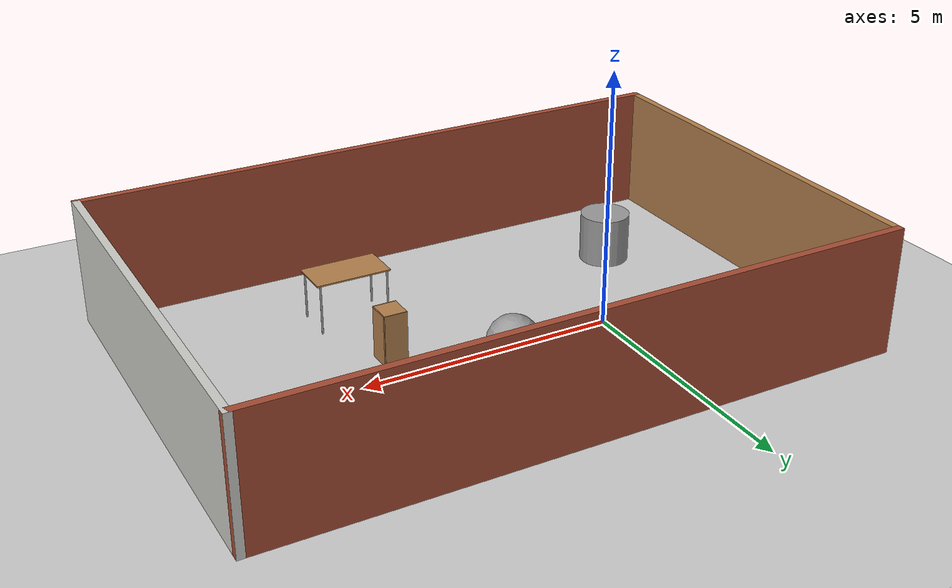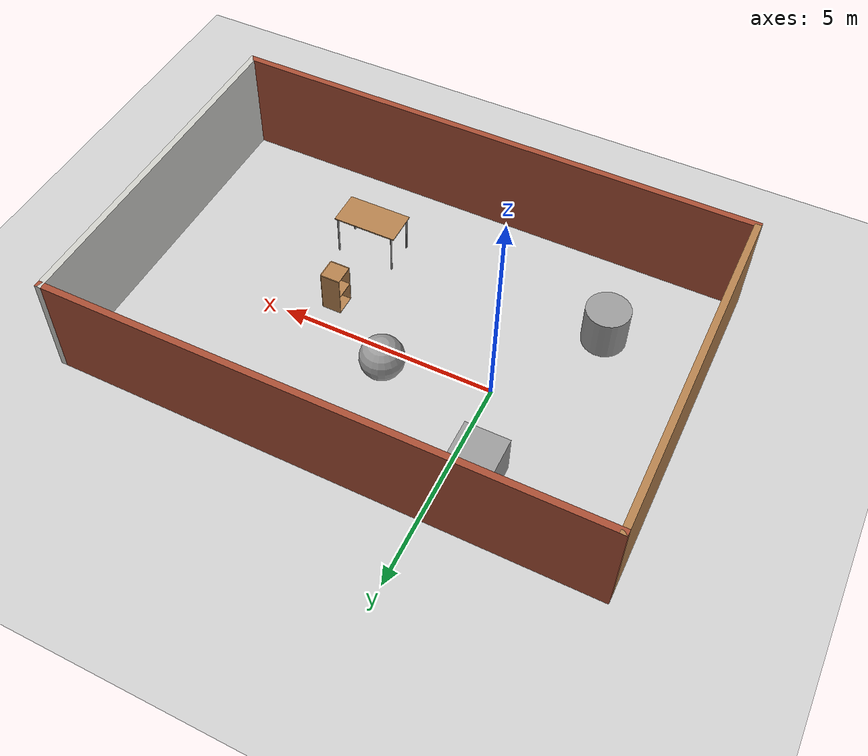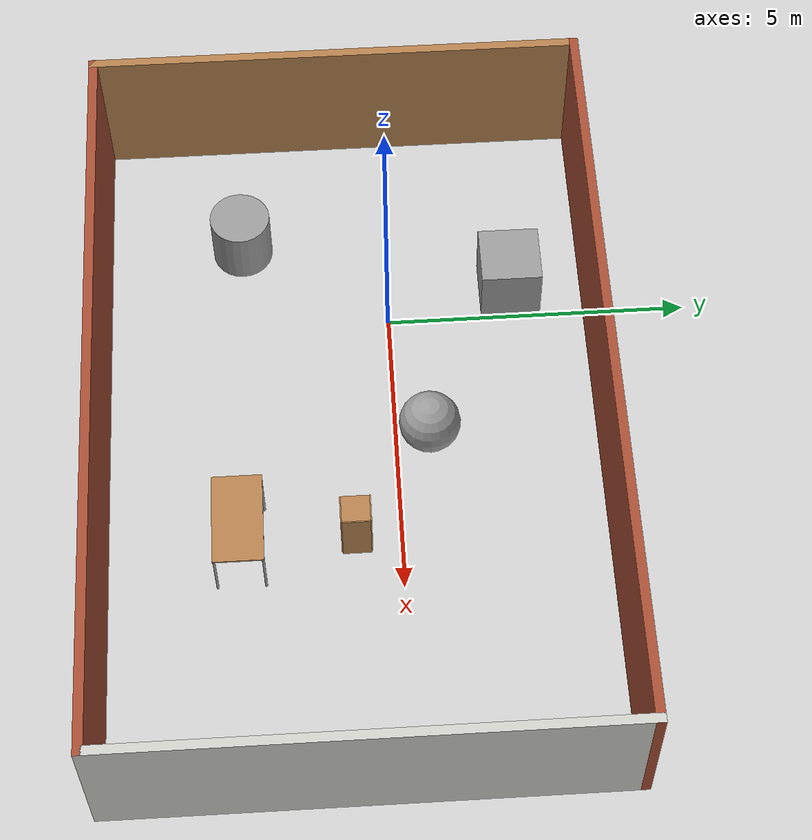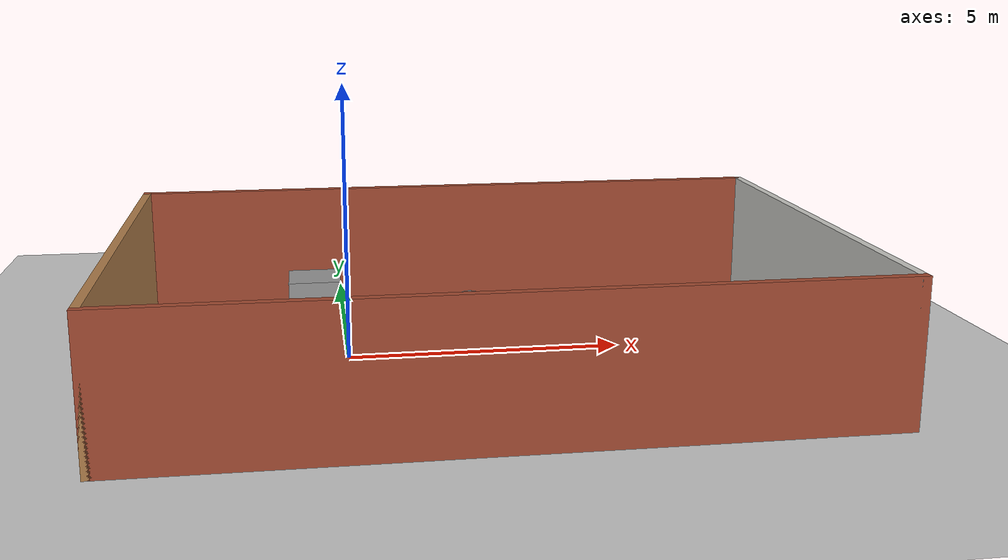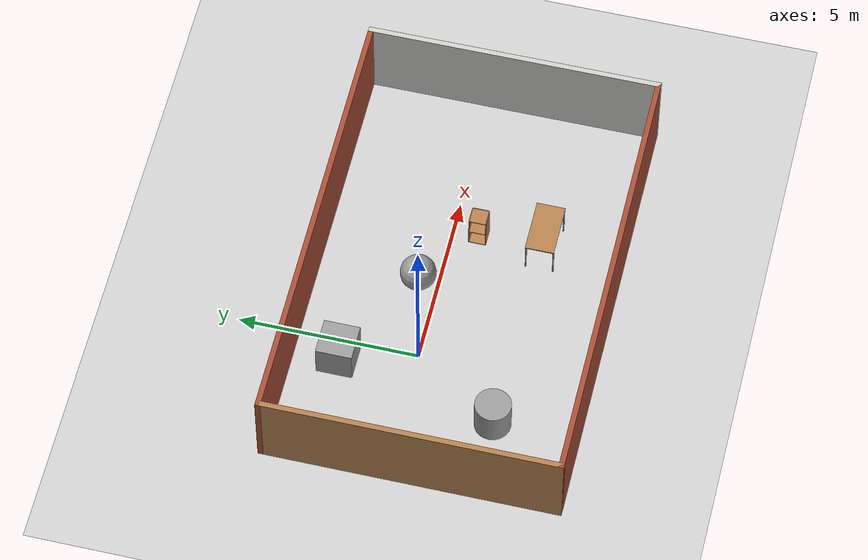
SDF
<sdf version="1.6">
 <world name="default">
  <light name="sun" type="directional">
   <pose>0 0 10 0 -0 0</pose>
   <diffuse>0.8 0.8 0.8 1</diffuse>
   <specular>0.2 0.2 0.2 1</specular>
   <attenuation>
    <range>1000</range>
    <constant>0.9</constant>
    <linear>0.01</linear>
    <quadratic>0.001</quadratic>
   </attenuation>
   <direction>-0.5 0.1 -0.9</direction>
  </light>
  <model name="ground_plane">
   <static>1</static>
   <link name="link">
    <collision name="collision">
     <geometry><plane><normal>0 0 1</normal><size>100 100</size></plane></geometry>
     <surface><friction><ode><mu>100</mu><mu2>50</mu2></ode></friction></surface>
    </collision>
    <visual name="visual">
     <cast_shadows>0</cast_shadows>
     <geometry><plane><normal>0 0 1</normal><size>100 100</size></plane></geometry>
     <material>
      <script><uri>file://media/materials/scripts/gazebo.material</uri><name>Gazebo/Grey</name></script>
     </material>
    </visual>
   </link>
  </model>
  <gravity>0 0 -9.8</gravity>
  <magnetic_field>6e-06 2.3e-05 -4.2e-05</magnetic_field>
  <atmosphere type="adiabatic"/>
  <physics name="default_physics" default="0" type="ode">
   <max_step_size>0.001</max_step_size>
   <real_time_factor>1</real_time_factor>
   <real_time_update_rate>1000</real_time_update_rate>
  </physics>
  <scene><ambient>0.4 0.4 0.4 1</ambient><background>0.7 0.7 0.7 1</background><shadows>1</shadows></scene>
  <audio><device>default</device></audio>
  <spherical_coordinates>
   <surface_model>EARTH_WGS84</surface_model>
   <latitude_deg>0</latitude_deg>
   <longitude_deg>0</longitude_deg>
   <elevation>0</elevation>
   <heading_deg>0</heading_deg>
  </spherical_coordinates>
  <model name="indoor_environment2">
   <pose>2.3301 -0.67241 0 0 -0 0</pose>
   <link name="Wall_2">
    <collision name="Wall_2_Collision">
     <geometry><box><size>12.5 0.15 2.5</size></box></geometry>
     <pose>0 0 1.25 0 -0 0</pose>
    </collision>
    <visual name="Wall_2_Visual">
     <pose>0 0 1.25 0 -0 0</pose>
     <geometry><box><size>12.5 0.15 2.5</size></box></geometry>
     <material>
      <script><uri>file://media/materials/scripts/gazebo.material</uri><name>Gazebo/Bricks</name></script>
      <ambient>1 1 1 1</ambient>
     </material>
     <meta><layer>0</layer></meta>
    </visual>
    <pose>-0 -4.05 0 0 -0 0</pose>
   </link>
   <link name="Wall_6">
    <collision name="Wall_6_Collision">
     <geometry><box><size>8.25 0.15 2.5</size></box></geometry>
     <pose>0 0 1.25 0 -0 0</pose>
    </collision>
    <visual name="Wall_6_Visual">
     <pose>0 0 1.25 0 -0 0</pose>
     <geometry><box><size>8.25 0.15 2.5</size></box></geometry>
     <material>
      <script><uri>file://media/materials/scripts/gazebo.material</uri><name>Gazebo/CeilingTiled</name></script>
      <ambient>1 1 1 1</ambient>
     </material>
     <meta><layer>0</layer></meta>
    </visual>
    <pose>6.175 0 0 0 -0 1.5708</pose>
   </link>
   <link name="Wall_7">
    <collision name="Wall_7_Collision">
     <geometry><box><size>12.5 0.15 2.5</size></box></geometry>
     <pose>0 0 1.25 0 -0 0</pose>
    </collision>
    <visual name="Wall_7_Visual">
     <pose>0 0 1.25 0 -0 0</pose>
     <geometry><box><size>12.5 0.15 2.5</size></box></geometry>
     <material>
      <script><uri>file://media/materials/scripts/gazebo.material</uri><name>Gazebo/Bricks</name></script>
      <ambient>1 1 1 1</ambient>
     </material>
     <meta><layer>0</layer></meta>
    </visual>
    <pose>-0 4.05 0 0 -0 3.14159</pose>
   </link>
   <link name="Wall_8">
    <collision name="Wall_8_Collision">
     <geometry><box><size>8.25 0.15 2.5</size></box></geometry>
     <pose>0 0 1.25 0 -0 0</pose>
    </collision>
    <visual name="Wall_8_Visual">
     <pose>0 0 1.25 0 -0 0</pose>
     <geometry><box><size>8.25 0.15 2.5</size></box></geometry>
     <material>
      <script><uri>file://media/materials/scripts/gazebo.material</uri><name>Gazebo/Wood</name></script>
      <ambient>1 1 1 1</ambient>
     </material>
     <meta><layer>0</layer></meta>
    </visual>
    <pose>-6.175 0 0 0 -0 -1.5708</pose>
   </link>
   <static>1</static>
  </model>
  <model name="unit_cylinder">
   <pose>-1.59721 -2.41099 0.499992 -3e-06 4e-06 0</pose>
   <link name="link">
    <inertial>
     <mass>1</mass>
     <inertia><ixx>0.145833</ixx><ixy>0</ixy><ixz>0</ixz><iyy>0.145833</iyy><iyz>0</iyz><izz>0.125</izz></inertia>
    </inertial>
    <collision name="collision">
     <geometry><cylinder><radius>0.5</radius><length>1</length></cylinder></geometry>
    </collision>
    <visual name="visual">
     <geometry><cylinder><radius>0.5</radius><length>1</length></cylinder></geometry>
     <material>
      <script><name>Gazebo/Grey</name><uri>file://media/materials/scripts/gazebo.material</uri></script>
     </material>
    </visual>
   </link>
  </model>
  <model name="unit_box">
   <pose>-0.578002 2.08155 0.499995 0 -1e-05 0</pose>
   <link name="link">
    <inertial>
     <mass>1</mass>
     <inertia>
      <ixx>0.166667</ixx>
      <ixy>0</ixy>
      <ixz>0</ixz>
      <iyy>0.166667</iyy>
      <iyz>0</iyz>
      <izz>0.166667</izz>
     </inertia>
    </inertial>
    <collision name="collision"><geometry><box><size>1 1 1</size></box></geometry></collision>
    <visual name="visual">
     <geometry><box><size>1 1 1</size></box></geometry>
     <material>
      <script><name>Gazebo/Grey</name><uri>file://media/materials/scripts/gazebo.material</uri></script>
     </material>
    </visual>
   </link>
  </model>
  <model name="unit_sphere">
   <pose>2.29895 0.560047 0.5 0 -0 0</pose>
   <link name="link">
    <inertial>
     <mass>1</mass>
     <inertia><ixx>0.1</ixx><ixy>0</ixy><ixz>0</ixz><iyy>0.1</iyy><iyz>0</iyz><izz>0.1</izz></inertia>
    </inertial>
    <collision name="collision"><geometry><sphere><radius>0.5</radius></sphere></geometry></collision>
    <visual name="visual">
     <geometry><sphere><radius>0.5</radius></sphere></geometry>
     <material>
      <script><name>Gazebo/Grey</name><uri>file://media/materials/scripts/gazebo.material</uri></script>
     </material>
    </visual>
   </link>
  </model>
  <model name="cabinet">
   <static>1</static>
   <link name="cabinet_bottom_plate">
    <inertial>
     <pose>0 0 -1 0 -0 0</pose>
     <inertia><ixx>2.05</ixx><ixy>0</ixy><ixz>0</ixz><iyy>2.05</iyy><iyz>0</iyz><izz>2.05</izz></inertia>
     <mass>25</mass>
    </inertial>
    <collision name="cabinet_bottom_plate_geom">
     <pose>0 0 0.01 0 -0 0</pose>
     <geometry><box><size>0.45 0.45 0.02</size></box></geometry>
    </collision>
    <visual name="cabinet_bottom_plate_geom_visual">
     <pose>0 0 0.01 0 -0 0</pose>
     <geometry><box><size>0.45 0.45 0.02</size></box></geometry>
     <material>
      <script><uri>file://media/materials/scripts/gazebo.material</uri><name>Gazebo/Wood</name></script>
     </material>
    </visual>
    <collision name="cabinet_bottom_plate_geom_cabinet_back_plate">
     <pose>0.235 0 0.51 0 -0 0</pose>
     <geometry><box><size>0.02 0.45 1.02</size></box></geometry>
    </collision>
    <visual name="cabinet_bottom_plate_geom_cabinet_back_plate_visual">
     <pose>0.235 0 0.51 0 -0 0</pose>
     <geometry><box><size>0.02 0.45 1.02</size></box></geometry>
     <material>
      <script><uri>file://media/materials/scripts/gazebo.material</uri><name>Gazebo/Wood</name></script>
     </material>
    </visual>
    <collision name="cabinet_bottom_plate_geom_cabinet_left_plate">
     <pose>0 0.235 0.51 0 -0 0</pose>
     <geometry><box><size>0.45 0.02 1.02</size></box></geometry>
    </collision>
    <visual name="cabinet_bottom_plate_geom_cabinet_left_plate_visual">
     <pose>0 0.235 0.51 0 -0 0</pose>
     <geometry><box><size>0.45 0.02 1.02</size></box></geometry>
     <material>
      <script><uri>file://media/materials/scripts/gazebo.material</uri><name>Gazebo/Wood</name></script>
     </material>
    </visual>
    <collision name="cabinet_bottom_plate_geom_cabinet_middle_plate">
     <pose>0 0 0.51 0 -0 0</pose>
     <geometry><box><size>0.45 0.45 0.02</size></box></geometry>
    </collision>
    <visual name="cabinet_bottom_plate_geom_cabinet_middle_plate_visual">
     <pose>0 0 0.51 0 -0 0</pose>
     <geometry><box><size>0.45 0.45 0.02</size></box></geometry>
     <material>
      <script><uri>file://media/materials/scripts/gazebo.material</uri><name>Gazebo/Wood</name></script>
     </material>
    </visual>
    <collision name="cabinet_bottom_plate_geom_cabinet_right_plate">
     <pose>0 -0.235 0.51 0 -0 0</pose>
     <geometry><box><size>0.45 0.02 1.02</size></box></geometry>
    </collision>
    <visual name="cabinet_bottom_plate_geom_cabinet_right_plate_visual">
     <pose>0 -0.235 0.51 0 -0 0</pose>
     <geometry><box><size>0.45 0.02 1.02</size></box></geometry>
     <material>
      <script><uri>file://media/materials/scripts/gazebo.material</uri><name>Gazebo/Wood</name></script>
     </material>
    </visual>
    <collision name="cabinet_bottom_plate_geom_cabinet_top_plate">
     <pose>0 0 1.01 0 -0 0</pose>
     <geometry><box><size>0.45 0.45 0.02</size></box></geometry>
    </collision>
    <visual name="cabinet_bottom_plate_geom_cabinet_top_plate_visual">
     <pose>0 0 1.01 0 -0 0</pose>
     <geometry><box><size>0.45 0.45 0.02</size></box></geometry>
     <material>
      <script><uri>file://media/materials/scripts/gazebo.material</uri><name>Gazebo/Wood</name></script>
     </material>
    </visual>
   </link>
   <pose>4.11242 -0.714468 0 0 -0 0</pose>
  </model>
  <model name="table">
   <static>1</static>
   <link name="link">
    <collision name="surface">
     <pose>0 0 1 0 -0 0</pose>
     <geometry><box><size>1.5 0.8 0.03</size></box></geometry>
     <surface><friction><ode><mu>0.6</mu><mu2>0.6</mu2></ode></friction></surface>
    </collision>
    <visual name="visual1">
     <pose>0 0 1 0 -0 0</pose>
     <geometry><box><size>1.5 0.8 0.03</size></box></geometry>
     <material>
      <script><uri>file://media/materials/scripts/gazebo.material</uri><name>Gazebo/Wood</name></script>
     </material>
    </visual>
    <collision name="front_left_leg">
     <pose>0.68 0.38 0.5 0 -0 0</pose>
     <geometry><cylinder><radius>0.02</radius><length>1</length></cylinder></geometry>
    </collision>
    <visual name="front_left_leg">
     <pose>0.68 0.38 0.5 0 -0 0</pose>
     <geometry><cylinder><radius>0.02</radius><length>1</length></cylinder></geometry>
     <material>
      <script><uri>file://media/materials/scripts/gazebo.material</uri><name>Gazebo/Grey</name></script>
     </material>
    </visual>
    <collision name="front_right_leg">
     <pose>0.68 -0.38 0.5 0 -0 0</pose>
     <geometry><cylinder><radius>0.02</radius><length>1</length></cylinder></geometry>
    </collision>
    <visual name="front_right_leg">
     <pose>0.68 -0.38 0.5 0 -0 0</pose>
     <geometry><cylinder><radius>0.02</radius><length>1</length></cylinder></geometry>
     <material>
      <script><uri>file://media/materials/scripts/gazebo.material</uri><name>Gazebo/Grey</name></script>
     </material>
    </visual>
    <collision name="back_right_leg">
     <pose>-0.68 -0.38 0.5 0 -0 0</pose>
     <geometry><cylinder><radius>0.02</radius><length>1</length></cylinder></geometry>
    </collision>
    <visual name="back_right_leg">
     <pose>-0.68 -0.38 0.5 0 -0 0</pose>
     <geometry><cylinder><radius>0.02</radius><length>1</length></cylinder></geometry>
     <material>
      <script><uri>file://media/materials/scripts/gazebo.material</uri><name>Gazebo/Grey</name></script>
     </material>
    </visual>
    <collision name="back_left_leg">
     <pose>-0.68 0.38 0.5 0 -0 0</pose>
     <geometry><cylinder><radius>0.02</radius><length>1</length></cylinder></geometry>
    </collision>
    <visual name="back_left_leg">
     <pose>-0.68 0.38 0.5 0 -0 0</pose>
     <geometry><cylinder><radius>0.02</radius><length>1</length></cylinder></geometry>
     <material>
      <script><uri>file://media/materials/scripts/gazebo.material</uri><name>Gazebo/Grey</name></script>
     </material>
    </visual>
   </link>
   <pose>4.1663 -2.54749 0 0 -0 0</pose>
  </model>
 </world>
</sdf>
